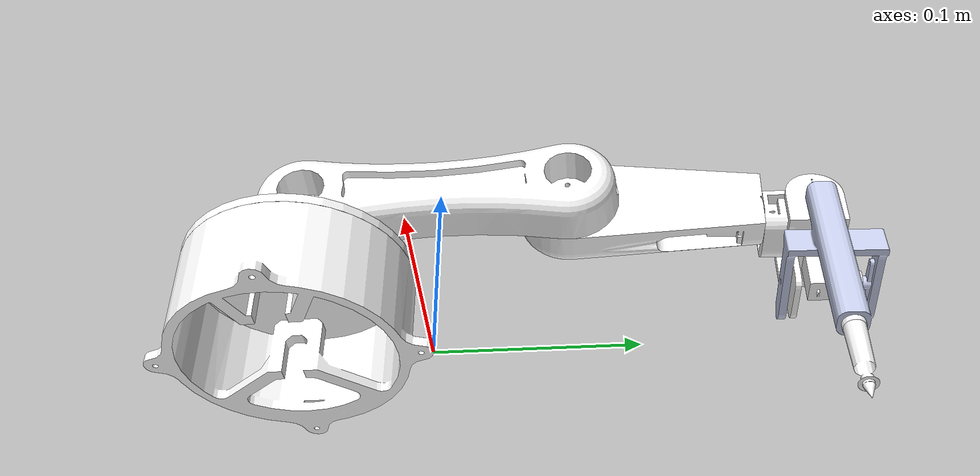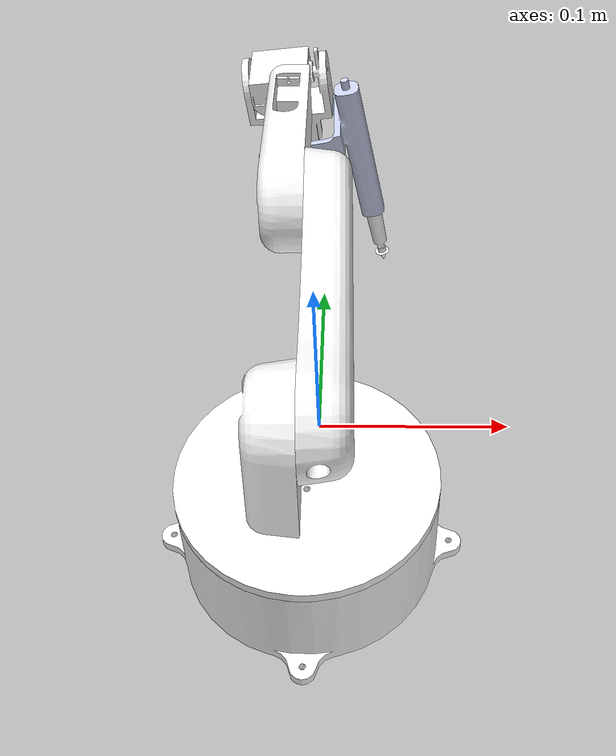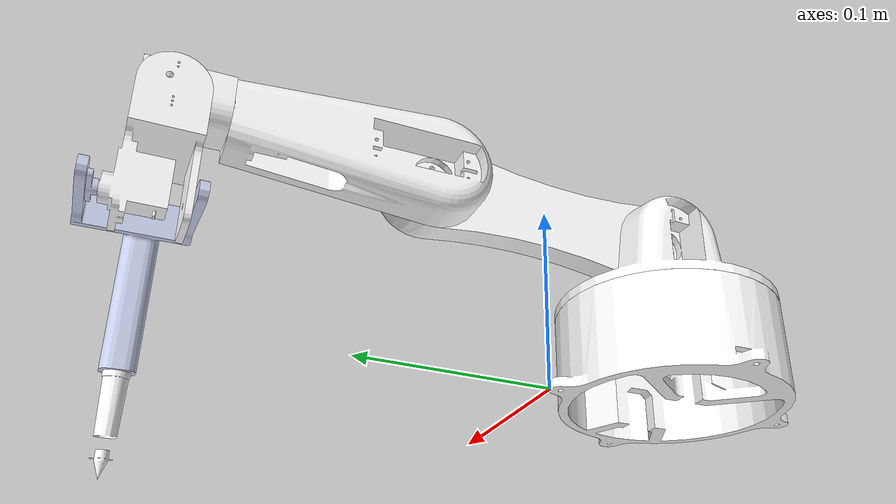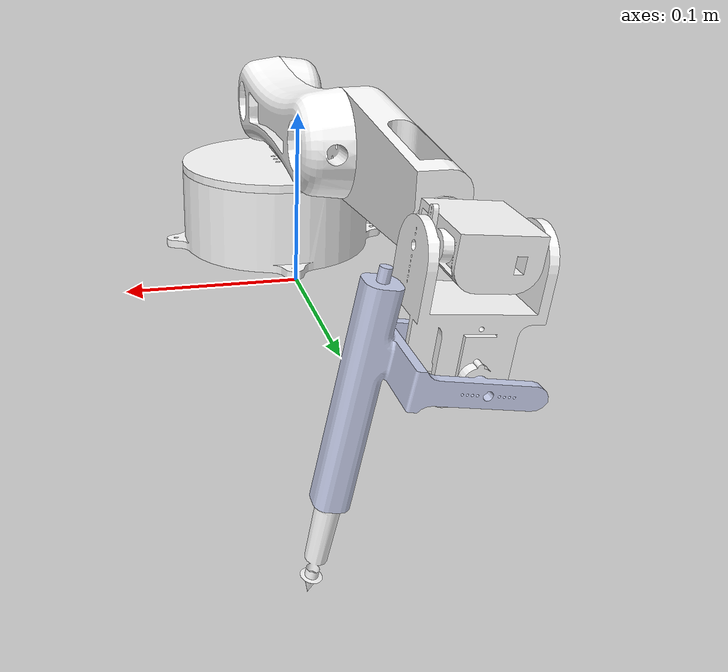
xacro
<?xml version="1.0"?>
<robot xmlns:xacro="http://www.ros.org/wiki/xacro" name="volvo_arm">
    <xacro:arg name="initial_positions_file" default="initial_positions.yaml" />

    <!-- Import volvo_arm urdf file -->
    <xacro:include filename="$(find my_robot_description)/urdf/my_arm.urdf.xacro" />

    <!-- Import control_xacro -->
    <xacro:include filename="volvo_arm.ros2_control.xacro" />

    <xacro:volvo_arm_ros2_control name="FakeSystem" initial_positions_file="$(arg initial_positions_file)"/>

</robot>

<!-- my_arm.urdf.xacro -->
<robot name="volvo_arm" xmlns:xacro="http://www.ros.org/wiki/xacro">

  <link name="world"/>
  <joint name="world_to_base" type="fixed">
      <parent link="world"/>
      <child link="base_link"/>
      <origin xyz="0 0 0" rpy="0 0 0"/>
  </joint>
  <xacro:include filename="$(find my_robot_description)/urdf/volvo_arm.ros2_control.xacro"/>

  <!-- Dummy world link — required because KDL cannot handle inertia on root link -->

                                                   <!-- Base Link -->
  <link
    name="base_link">
    <inertial>
      <origin
        xyz="0.000487382472298465 0.0222870317654345 0.0720237987310851"
        rpy="0 0 0" />
      <mass
        value="0.115871405048988" />
      <inertia
        ixx="0.000190283198402998"
        ixy="-1.39594162639627E-06"
        ixz="-3.95215355888866E-07"
        iyy="0.000350608786343993"
        iyz="-2.76665531634207E-08"
        izz="0.000210216448944284" />
    </inertial>
    <visual>
      <origin
        xyz="0 0 0"
        rpy="0 0 0" />
      <geometry>
        <mesh
          filename="package://my_robot_description/meshes/base_link.STL" />
      </geometry>
      <material
        name="">
        <color
          rgba="1 1 1 1" />
      </material>
    </visual>
    <collision>
      <origin
        xyz="0 0 0"
        rpy="0 0 0" />
      <geometry>
        <mesh
          filename="package://my_robot_description/meshes/base_link.STL" />
      </geometry>
    </collision>
  </link>
                                                    <!-- Link_1 -->
  <link
    name="Link_1">
    <inertial>
      <origin
        xyz="-0.0059171 -9.6719E-05 0.01669"
        rpy="0 0 0" />
      <mass
        value="0.107" />
      <inertia
        ixx="0.00010781"
        ixy="1.5668E-07"
        ixz="9.697E-06"
        iyy="9.8197E-05"
        iyz="1.5845E-07"
        izz="0.00012412" />
    </inertial>
    <visual>
      <origin
        xyz="0 0 0"
        rpy="0 0 0" />
      <geometry>
        <mesh
          filename="package://my_robot_description/meshes/Link_1.STL" />
      </geometry>
      <material
        name="">
        <color
          rgba="1 1 1 1" />
      </material>
    </visual>
    <collision>
      <origin
        xyz="0 0 0"
        rpy="0 0 0" />
      <geometry>
        <mesh
          filename="package://my_robot_description/meshes/Link_1.STL" />
      </geometry>
    </collision>
  </link>
                                                    <!-- Joint_1 -->
  <joint
    name="Joint_1"
    type="revolute">
    <origin
      xyz="-0.0014267 -0.071986 0.05"
      rpy="0 0 0" />
    <parent
      link="base_link" />
    <child
      link="Link_1" />
    <axis
      xyz="0 0 1" />
    <limit
      lower="0"
      upper="3.14"
      effort="11.77"
      velocity="5.24" />
  </joint>
                                                    <!-- Link_2 -->
  <link
    name="Link_2">
    <inertial>
      <origin
        xyz="0.069943 0.0028198 0.014518"
        rpy="0 0 0" />
      <mass
        value="0.13819" />
      <inertia
        ixx="3.1465E-05"
        ixy="-1.5383E-05"
        ixz="-4.5168E-12"
        iyy="0.00041241"
        iyz="1.9301E-11"
        izz="0.00043178" />
    </inertial>
    <visual>
      <origin
        xyz="0 0 0"
        rpy="0 0 0" />
      <geometry>
        <mesh
          filename="package://my_robot_description/meshes/Link_2.STL" />
      </geometry>
      <material
        name="">
        <color
          rgba="1 1 1 1" />
      </material>
    </visual>
    <collision>
      <origin
        xyz="0 0 0"
        rpy="0 0 0" />
      <geometry>
        <mesh
          filename="package://my_robot_description/meshes/Link_2.STL" />
      </geometry>
    </collision>
  </link>
                                                    <!-- Joint_2 -->
  <joint
    name="Joint_2"
    type="revolute">
    <origin
      xyz="-0.0066991 -0.0001094 0.04355"
      rpy="1.5708 0 1.5871" />
    <parent
      link="Link_1" />
    <child
      link="Link_2" />
    <axis
      xyz="0 0 1" />
    <limit
      lower="0"
      upper="3.14"
      effort="11.77"
      velocity="5.24" />
  </joint>
                                                    <!-- Link_3 -->
  <link
    name="Link_3">
    <inertial>
      <origin
        xyz="0.0361585404570973 -0.00106934446564882 -0.00648218227458176"
        rpy="0 0 0" />
      <mass
        value="0.0874630637444097" />
      <inertia
        ixx="2.17509952571795E-05"
        ixy="2.37570071641342E-06"
        ixz="8.16739823042504E-07"
        iyy="0.000104909976994192"
        iyz="-1.46756787596858E-08"
        izz="0.000117932295253632" />
    </inertial>
    <visual>
      <origin
        xyz="0 0 0"
        rpy="0 0 0" />
      <geometry>
        <mesh
          filename="package://my_robot_description/meshes/Link_3.STL" />
      </geometry>
      <material
        name="">
        <color
          rgba="1 1 1 1" />
      </material>
    </visual>
    <collision>
      <origin
        xyz="0 0 0"
        rpy="0 0 0" />
      <geometry>
        <mesh
          filename="package://my_robot_description/meshes/Link_3.STL" />
      </geometry>
    </collision>
  </link>
                                                    <!-- Joint_3 -->
  <joint
    name="Joint_3"
    type="revolute">
    <origin
      xyz="0.13989 0.0056395 0"
      rpy="0 0 0" />
    <parent
      link="Link_2" />
    <child
      link="Link_3" />
    <axis
      xyz="0 0 1" />
    <limit
      lower="0"
      upper="3.14"
      effort="11.77"
      velocity="5.24" />
  </joint>
                                                    <!-- Link_4 -->
  <link
    name="Link_4">
    <inertial>
      <origin
        xyz="0.0058821 -1.288E-05 0.018701"
        rpy="0 0 0" />
      <mass
        value="0.022596" />
      <inertia
        ixx="3.7185E-06"
        ixy="4.6198E-08"
        ixz="6.7539E-08"
        iyy="4.4378E-06"
        iyz="-5.8492E-09"
        izz="2.6419E-06" />
    </inertial>
    <visual>
      <origin
        xyz="0 0 0"
        rpy="0 0 0" />
      <geometry>
        <mesh
          filename="package://my_robot_description/meshes/Link_4.STL" />
      </geometry>
      <material
        name="">
        <color
          rgba="1 1 1 1" />
      </material>
    </visual>
    <collision>
      <origin
        xyz="0 0 0"
        rpy="0 0 0" />
      <geometry>
        <mesh
          filename="package://my_robot_description/meshes/Link_4.STL" />
      </geometry>
    </collision>
  </link>
                                                    <!-- Joint_4 -->
   <joint
    name="Joint_4"
    type="revolute">
    <origin
      xyz="0.10404 -0.0083446 -0.00765"
      rpy="2.3843 1.5708 2.3469" />
    <parent
      link="Link_3" />
    <child
      link="Link_4" />
    <axis
      xyz="0 0 1" />
    <limit
      lower="0"
      upper="3.14"
      effort="1.96"
      velocity="10.47" />
  </joint>
                                                    <!-- Link_5 -->
  <link
    name="Link_5">
    <inertial>
      <origin
        xyz="0.0260391734047523 0.00564766689566734 -0.0199715834177317"
        rpy="0 0 0" />
      <mass
        value="0.025116537146997" />
      <inertia
        ixx="7.46173552532795E-06"
        ixy="-2.70769155918427E-07"
        ixz="6.43653958451495E-09"
        iyy="1.01049848703407E-05"
        iyz="4.01812191416276E-10"
        izz="7.07314801847909E-06" />
    </inertial>
    <visual>
      <origin
        xyz="0 0 0"
        rpy="0 0 0" />
      <geometry>
        <mesh
          filename="package://my_robot_description/meshes/Link_5.STL" />
      </geometry>
      <material
        name="">
        <color
          rgba="1 1 1 1" />
      </material>
    </visual>
    <collision>
      <origin
        xyz="0 0 0"
        rpy="0 0 0" />
      <geometry>
        <mesh
          filename="package://my_robot_description/meshes/Link_5.STL" />
      </geometry>
    </collision>
  </link>
                                                    <!-- Joint_5 -->
  <joint
    name="Joint_5"
    type="revolute">
    <origin
      xyz="-0.0164 0.0032453 0.0238"
      rpy="1.5708 0.15346 -1.676" />
    <parent
      link="Link_4" />
    <child
      link="Link_5" />
    <axis
      xyz="0 0 1" />
    <limit
      lower="0"
      upper="3.14"
      effort="1.96"
      velocity="10.47" />
  </joint>
                                                     <!-- Link_6 -->
  <link
    name="Link_6">
    <inertial>
      <origin
        xyz="0.0294014437828229 0.00585308835819957 -0.0225235245313526"
        rpy="0 0 0" />
      <mass
        value="0.0198615128117841" />
      <inertia
        ixx="1.36160563584188E-05"
        ixy="-2.91167873042026E-06"
        ixz="4.77143113802378E-07"
        iyy="8.3393056691103E-06"
        iyz="2.42823797189246E-07"
        izz="1.61521132553464E-05" />
    </inertial>
    <visual>
      <origin
        xyz="0 0 0"
        rpy="0 0 0" />
      <geometry>
        <mesh
          filename="package://my_robot_description/meshes/Link_6.STL" />
      </geometry>
      <material
        name="">
        <color
          rgba="0.792156862745098 0.819607843137255 0.933333333333333 1" />
      </material>
    </visual>
    <collision>
      <origin
        xyz="0 0 0"
        rpy="0 0 0" />
      <geometry>
        <mesh
          filename="package://my_robot_description/meshes/Link_6.STL" />
      </geometry>
    </collision>
  </link>
                                                     <!-- Joint_6 -->
  <joint
    name="Joint_6"
    type="revolute">
    <origin
      xyz="0.040154 0.031812 -0.020135"
      rpy="-1.5708 -1.4652 0.16243" />
    <parent
      link="Link_5" />
    <child
      link="Link_6" />
    <axis
      xyz="0 0 1" />
    <limit
      lower="0"
      upper="3.14"
      effort="1.96"
      velocity="10.47" />
  </joint>
                                                      <!-- EE -->
  <link
    name="EE">
    <inertial>
      <origin
        xyz="1.27467481014776E-14 1.04971586978309E-13 -0.00543750000010555"
        rpy="0 0 0" />
      <mass
        value="5.33160998235881E-05" />
      <inertia
        ixx="1.32322342813833E-10"
        ixy="-1.93870456067116E-26"
        ixz="3.61437134110542E-25"
        iyy="1.32322342813833E-10"
        iyz="-4.01877299555792E-26"
        izz="1.12323693303655E-10" />
    </inertial>
    <visual>
      <origin
        xyz="0 0 0"
        rpy="0 0 0" />
      <geometry>
        <mesh
          filename="package://my_robot_description/meshes/EE.STL" />
      </geometry>
      <material
        name="">
        <color
          rgba="1 1 1 1" />
      </material>
    </visual>
    <collision>
      <origin
        xyz="0 0 0"
        rpy="0 0 0" />
      <geometry>
        <mesh
          filename="package://my_robot_description/meshes/EE.STL" />
      </geometry>
    </collision>
  </link>
                                                    <!-- EE Joint -->
  <joint
    name="EE_joint"
    type="fixed">
    <origin
      xyz="0.056126 0.10377 -0.024365"
      rpy="-1.5708 0.017551 -0.1801" />
    <parent
      link="Link_6" />
    <child
      link="EE" />
    <axis
      xyz="0 0 1" />
  </joint>

</robot>
